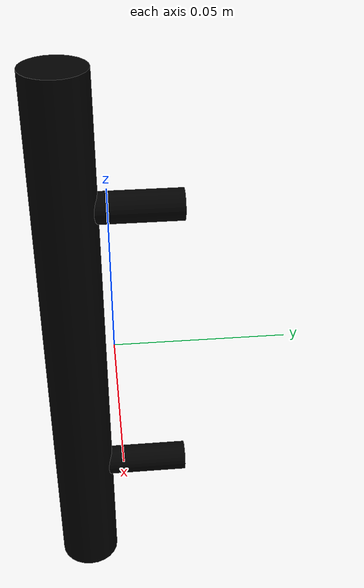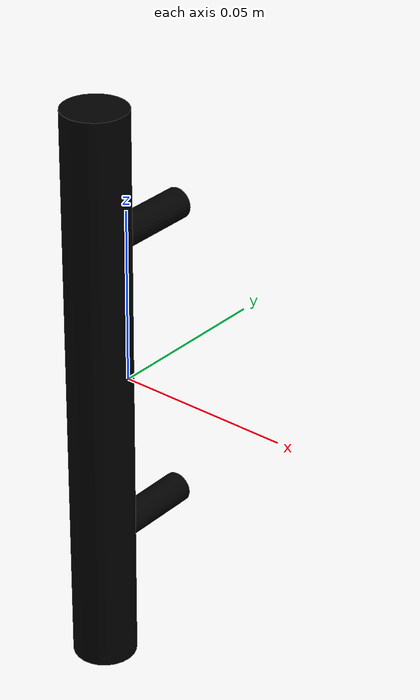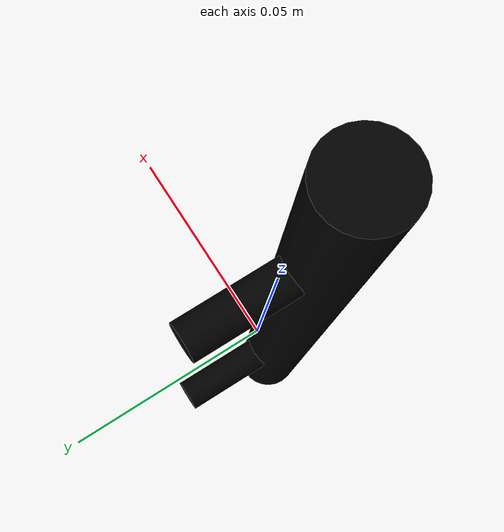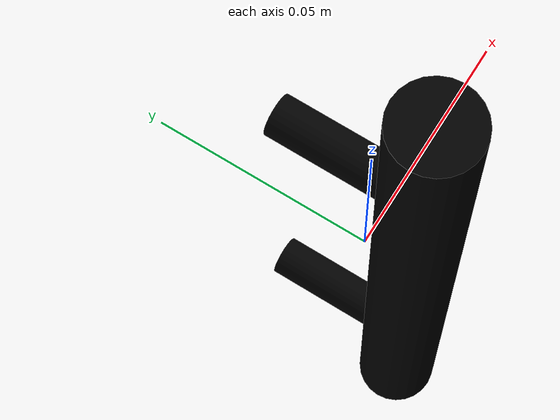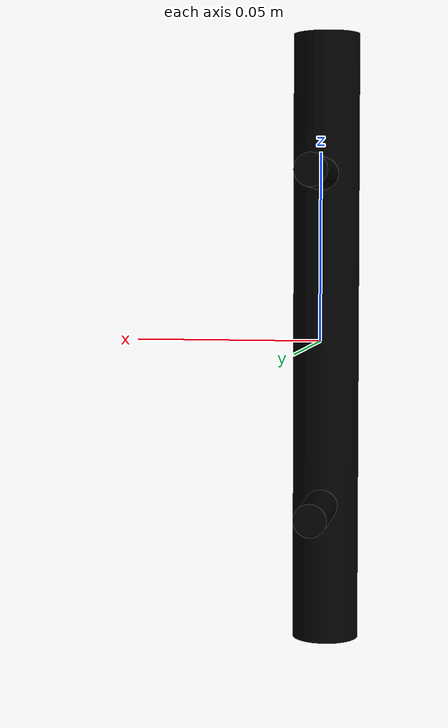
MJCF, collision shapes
<?xml version="1.0" ?>
<mujoco model="model">
    <compiler angle="radian"/>
    <asset>
        <mesh file="visuals/CabinetHandle014.obj" name="mesh"/>
        <texture file="visuals/T_BC001.png" name="tex" type="2d"/>
        <material name="mat" rgba="1 1 1 1.0" texture="tex" shininess="2" specular="0.7"/>
    </asset>
    <default>
        <default class="visual">
            <geom conaffinity="0" contype="0" group="1" type="mesh"/>
        </default>
        <default class="collision">
            <geom group="0" rgba="0 0 0 0"/>
        </default>
        <default class="spawn">
            <geom group="0" rgba="0 0 0 0" contype="0" conaffinity="0"/>
            <site group="0" rgba="0 0 0 0"/>
        </default>
    </default>
    <worldbody>
        <body>
            <body name="object">
                <geom mesh="mesh" type="mesh" solimp="0.998 0.998 0.001" solref="0.001 1" density="100" friction="0.95 0.3 0.1" class="visual" material="mat"/>
                <geom class="collision" type="cylinder" pos="-3.468617069302127e-05 -0.01139348279684782 6.027652125339955e-05" size="0.00898772943764925 0.08251278102397919" quat="1.0 0.0 0.0 0.0"/>
                <geom class="collision" type="cylinder" pos="8.337351027876139e-05 0.008070557378232479 0.04462290182709694" size="0.004386488813906908 0.012433787807822227" quat="0.7071067094802856 0.7071068286895752 0.0 0.0"/>
                <geom class="collision" type="cylinder" pos="8.337351027876139e-05 0.008070562034845352 -0.044709235429763794" size="0.004386488813906908 0.012433787807822227" quat="0.7071067094802856 0.7071068286895752 0.0 0.0" name="handle_connector"/>
            </body>
        </body>
    </worldbody>
    <actuator/>
</mujoco>
